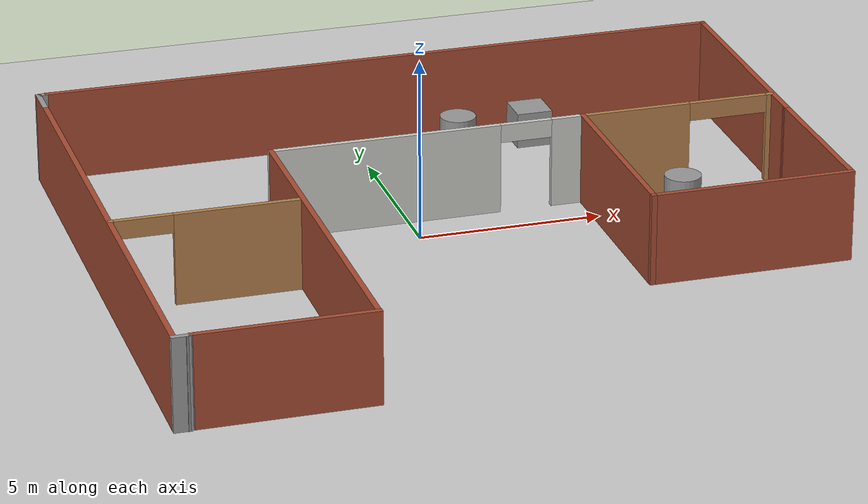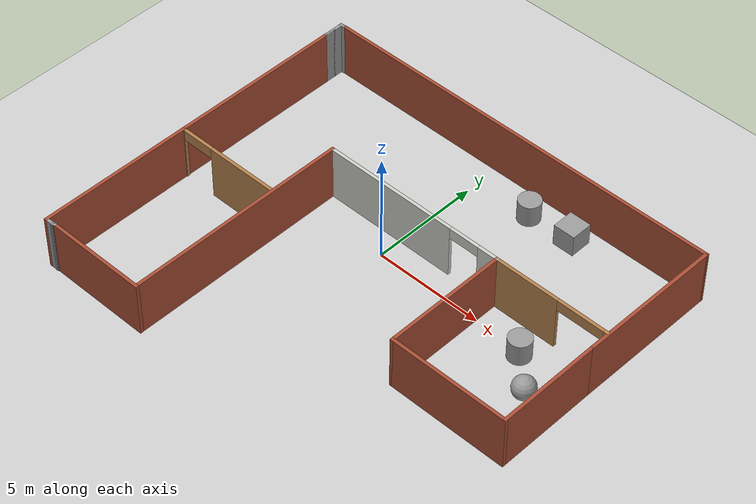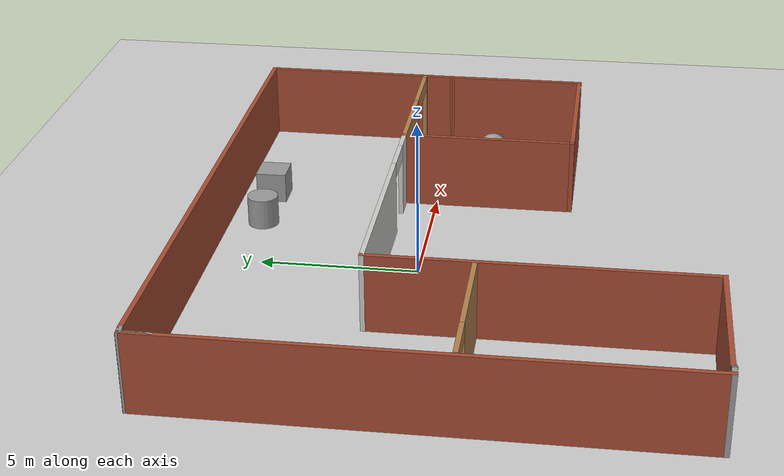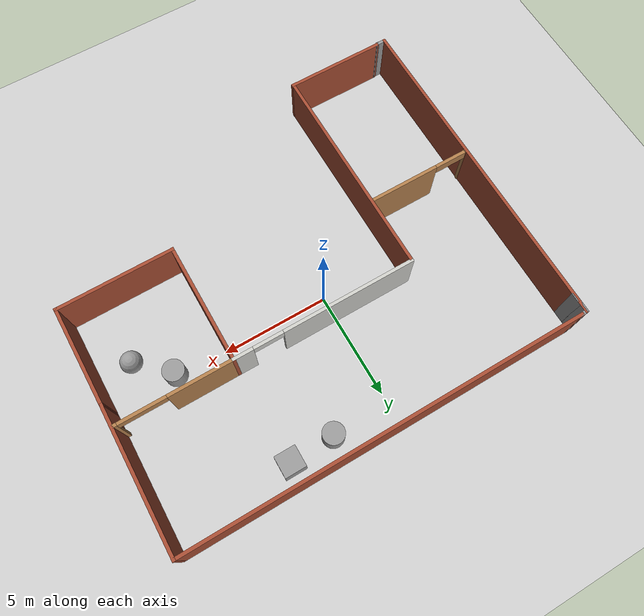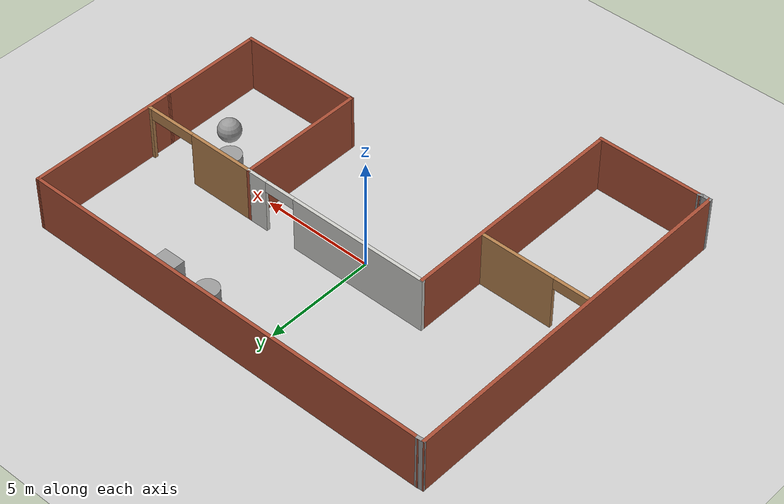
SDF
<sdf version="1.6">
 <world name="default">
  <model name="ground_plane">
   <static>1</static>
   <link name="link">
    <collision name="collision">
     <geometry><plane><normal>0 0 1</normal><size>100 100</size></plane></geometry>
     <surface><friction><ode><mu>100</mu><mu2>50</mu2></ode></friction></surface>
    </collision>
    <visual name="visual">
     <cast_shadows>0</cast_shadows>
     <geometry><plane><normal>0 0 1</normal><size>100 100</size></plane></geometry>
     <material>
      <script><uri>file://media/materials/scripts/gazebo.material</uri><name>Gazebo/Grey</name></script>
     </material>
    </visual>
   </link>
  </model>
  <model name="robot_world_new">
   <link name="Wall_46">
    <pose>0.126715 7.94172 0 0 -0 0</pose>
    <visual name="Wall_46_Visual">
     <pose>0 0 1.25 0 -0 0</pose>
     <geometry><box><size>19 0.15 2.5</size></box></geometry>
     <material>
      <script><uri>file://media/materials/scripts/gazebo.material</uri><name>Gazebo/Bricks</name></script>
      <ambient>1 1 1 1</ambient>
      <shader type="pixel"/>
      <diffuse>1 1 1 1</diffuse>
      <specular>0.2 0.2 0.2 1</specular>
      <emissive>0 0 0 1</emissive>
     </material>
     <meta><layer>0</layer></meta>
    </visual>
    <collision name="Wall_46_Collision">
     <pose>0 0 1.25 0 -0 0</pose>
     <geometry><box><size>19 0.15 2.5</size></box></geometry>
     <surface>
      <friction>
       <ode><mu>1</mu><mu2>1</mu2><fdir1>0 0 0</fdir1><slip1>0</slip1><slip2>0</slip2></ode>
       <torsional>
        <coefficient>1</coefficient>
        <patch_radius>0</patch_radius>
        <surface_radius>0</surface_radius>
        <use_patch_radius>1</use_patch_radius>
        <ode><slip>0</slip></ode>
       </torsional>
      </friction>
      <bounce><restitution_coefficient>0</restitution_coefficient><threshold>1e+06</threshold></bounce>
      <contact>
       <collide_without_contact>0</collide_without_contact>
       <collide_without_contact_bitmask>1</collide_without_contact_bitmask>
       <collide_bitmask>1</collide_bitmask>
       <ode>
        <soft_cfm>0</soft_cfm>
        <soft_erp>0.2</soft_erp>
        <kp>1e+13</kp>
        <kd>1</kd>
        <max_vel>0.01</max_vel>
        <min_depth>0</min_depth>
       </ode>
       <bullet>
        <split_impulse>1</split_impulse>
        <split_impulse_penetration_threshold>-0.01</split_impulse_penetration_threshold>
        <soft_cfm>0</soft_cfm>
        <soft_erp>0.2</soft_erp>
        <kp>1e+13</kp>
        <kd>1</kd>
       </bullet>
      </contact>
     </surface>
    </collision>
   </link>
   <link name="Wall_48">
    <pose>9.52607 4.64172 0 0 0 -1.57857</pose>
    <visual name="Wall_48_Visual">
     <pose>0 0 1.25 0 -0 0</pose>
     <geometry><box><size>6.75 0.15 2.5</size></box></geometry>
     <material>
      <script><uri>file://media/materials/scripts/gazebo.material</uri><name>Gazebo/Bricks</name></script>
      <ambient>1 1 1 1</ambient>
      <shader type="pixel"/>
      <diffuse>1 1 1 1</diffuse>
      <specular>0.2 0.2 0.2 1</specular>
      <emissive>0 0 0 1</emissive>
     </material>
     <meta><layer>0</layer></meta>
    </visual>
    <collision name="Wall_48_Collision">
     <pose>0 0 1.25 0 -0 0</pose>
     <geometry><box><size>6.75 0.15 2.5</size></box></geometry>
     <surface>
      <friction>
       <ode><mu>1</mu><mu2>1</mu2><fdir1>0 0 0</fdir1><slip1>0</slip1><slip2>0</slip2></ode>
       <torsional>
        <coefficient>1</coefficient>
        <patch_radius>0</patch_radius>
        <surface_radius>0</surface_radius>
        <use_patch_radius>1</use_patch_radius>
        <ode><slip>0</slip></ode>
       </torsional>
      </friction>
      <bounce><restitution_coefficient>0</restitution_coefficient><threshold>1e+06</threshold></bounce>
      <contact>
       <collide_without_contact>0</collide_without_contact>
       <collide_without_contact_bitmask>1</collide_without_contact_bitmask>
       <collide_bitmask>1</collide_bitmask>
       <ode>
        <soft_cfm>0</soft_cfm>
        <soft_erp>0.2</soft_erp>
        <kp>1e+13</kp>
        <kd>1</kd>
        <max_vel>0.01</max_vel>
        <min_depth>0</min_depth>
       </ode>
       <bullet>
        <split_impulse>1</split_impulse>
        <split_impulse_penetration_threshold>-0.01</split_impulse_penetration_threshold>
        <soft_cfm>0</soft_cfm>
        <soft_erp>0.2</soft_erp>
        <kp>1e+13</kp>
        <kd>1</kd>
       </bullet>
      </contact>
     </surface>
    </collision>
   </link>
   <link name="Wall_57">
    <pose>-6.79828 -7.90828 0 0 -0 3.14159</pose>
    <visual name="Wall_57_Visual">
     <pose>0 0 1.25 0 -0 0</pose>
     <geometry><box><size>4.75 0.15 2.5</size></box></geometry>
     <material>
      <script><uri>file://media/materials/scripts/gazebo.material</uri><name>Gazebo/Bricks</name></script>
      <ambient>1 1 1 1</ambient>
      <shader type="pixel"/>
      <diffuse>1 1 1 1</diffuse>
      <specular>0.2 0.2 0.2 1</specular>
      <emissive>0 0 0 1</emissive>
     </material>
     <meta><layer>0</layer></meta>
    </visual>
    <collision name="Wall_57_Collision">
     <pose>0 0 1.25 0 -0 0</pose>
     <geometry><box><size>4.75 0.15 2.5</size></box></geometry>
     <surface>
      <friction>
       <ode><mu>1</mu><mu2>1</mu2><fdir1>0 0 0</fdir1><slip1>0</slip1><slip2>0</slip2></ode>
       <torsional>
        <coefficient>1</coefficient>
        <patch_radius>0</patch_radius>
        <surface_radius>0</surface_radius>
        <use_patch_radius>1</use_patch_radius>
        <ode><slip>0</slip></ode>
       </torsional>
      </friction>
      <bounce><restitution_coefficient>0</restitution_coefficient><threshold>1e+06</threshold></bounce>
      <contact>
       <collide_without_contact>0</collide_without_contact>
       <collide_without_contact_bitmask>1</collide_without_contact_bitmask>
       <collide_bitmask>1</collide_bitmask>
       <ode>
        <soft_cfm>0</soft_cfm>
        <soft_erp>0.2</soft_erp>
        <kp>1e+13</kp>
        <kd>1</kd>
        <max_vel>0.01</max_vel>
        <min_depth>0</min_depth>
       </ode>
       <bullet>
        <split_impulse>1</split_impulse>
        <split_impulse_penetration_threshold>-0.01</split_impulse_penetration_threshold>
        <soft_cfm>0</soft_cfm>
        <soft_erp>0.2</soft_erp>
        <kp>1e+13</kp>
        <kd>1</kd>
       </bullet>
      </contact>
     </surface>
    </collision>
   </link>
   <link name="Wall_58">
    <pose>-9.14658 -7.92122 0 0 0 -2.87979</pose>
    <visual name="Wall_58_Visual">
     <pose>0 0 1.25 0 -0 0</pose>
     <geometry><box><size>0.25 0.15 2.5</size></box></geometry>
     <material>
      <script><uri>file://media/materials/scripts/gazebo.material</uri><name>Gazebo/Grey</name></script>
      <ambient>1 1 1 1</ambient>
      <shader type="pixel"/>
      <diffuse>0.7 0.7 0.7 1</diffuse>
      <specular>0.01 0.01 0.01 1</specular>
      <emissive>0 0 0 1</emissive>
     </material>
     <meta><layer>0</layer></meta>
    </visual>
    <collision name="Wall_58_Collision">
     <pose>0 0 1.25 0 -0 0</pose>
     <geometry><box><size>0.25 0.15 2.5</size></box></geometry>
     <surface>
      <friction>
       <ode><mu>1</mu><mu2>1</mu2><fdir1>0 0 0</fdir1><slip1>0</slip1><slip2>0</slip2></ode>
       <torsional>
        <coefficient>1</coefficient>
        <patch_radius>0</patch_radius>
        <surface_radius>0</surface_radius>
        <use_patch_radius>1</use_patch_radius>
        <ode><slip>0</slip></ode>
       </torsional>
      </friction>
      <bounce><restitution_coefficient>0</restitution_coefficient><threshold>1e+06</threshold></bounce>
      <contact>
       <collide_without_contact>0</collide_without_contact>
       <collide_without_contact_bitmask>1</collide_without_contact_bitmask>
       <collide_bitmask>1</collide_bitmask>
       <ode>
        <soft_cfm>0</soft_cfm>
        <soft_erp>0.2</soft_erp>
        <kp>1e+13</kp>
        <kd>1</kd>
        <max_vel>0.01</max_vel>
        <min_depth>0</min_depth>
       </ode>
       <bullet>
        <split_impulse>1</split_impulse>
        <split_impulse_penetration_threshold>-0.01</split_impulse_penetration_threshold>
        <soft_cfm>0</soft_cfm>
        <soft_erp>0.2</soft_erp>
        <kp>1e+13</kp>
        <kd>1</kd>
       </bullet>
      </contact>
     </surface>
    </collision>
   </link>
   <link name="Wall_59">
    <pose>-9.36988 -7.93416 0 0 -0 3.14159</pose>
    <visual name="Wall_59_Visual">
     <pose>0 0 1.25 0 -0 0</pose>
     <geometry><box><size>0.5 0.15 2.5</size></box></geometry>
     <material>
      <script><uri>file://media/materials/scripts/gazebo.material</uri><name>Gazebo/Grey</name></script>
      <ambient>1 1 1 1</ambient>
      <shader type="pixel"/>
      <diffuse>0.7 0.7 0.7 1</diffuse>
      <specular>0.01 0.01 0.01 1</specular>
      <emissive>0 0 0 1</emissive>
     </material>
     <meta><layer>0</layer></meta>
    </visual>
    <collision name="Wall_59_Collision">
     <pose>0 0 1.25 0 -0 0</pose>
     <geometry><box><size>0.5 0.15 2.5</size></box></geometry>
     <surface>
      <friction>
       <ode><mu>1</mu><mu2>1</mu2><fdir1>0 0 0</fdir1><slip1>0</slip1><slip2>0</slip2></ode>
       <torsional>
        <coefficient>1</coefficient>
        <patch_radius>0</patch_radius>
        <surface_radius>0</surface_radius>
        <use_patch_radius>1</use_patch_radius>
        <ode><slip>0</slip></ode>
       </torsional>
      </friction>
      <bounce><restitution_coefficient>0</restitution_coefficient><threshold>1e+06</threshold></bounce>
      <contact>
       <collide_without_contact>0</collide_without_contact>
       <collide_without_contact_bitmask>1</collide_without_contact_bitmask>
       <collide_bitmask>1</collide_bitmask>
       <ode>
        <soft_cfm>0</soft_cfm>
        <soft_erp>0.2</soft_erp>
        <kp>1e+13</kp>
        <kd>1</kd>
        <max_vel>0.01</max_vel>
        <min_depth>0</min_depth>
       </ode>
       <bullet>
        <split_impulse>1</split_impulse>
        <split_impulse_penetration_threshold>-0.01</split_impulse_penetration_threshold>
        <soft_cfm>0</soft_cfm>
        <soft_erp>0.2</soft_erp>
        <kp>1e+13</kp>
        <kd>1</kd>
       </bullet>
      </contact>
     </surface>
    </collision>
   </link>
   <link name="Wall_60">
    <pose>-9.54488 -0.009158 0 0 -0 1.5708</pose>
    <visual name="Wall_60_Visual">
     <pose>0 0 1.25 0 -0 0</pose>
     <geometry><box><size>16 0.15 2.5</size></box></geometry>
     <material>
      <script><uri>file://media/materials/scripts/gazebo.material</uri><name>Gazebo/Bricks</name></script>
      <ambient>1 1 1 1</ambient>
      <shader type="pixel"/>
      <diffuse>1 1 1 1</diffuse>
      <specular>0.2 0.2 0.2 1</specular>
      <emissive>0 0 0 1</emissive>
     </material>
     <meta><layer>0</layer></meta>
    </visual>
    <collision name="Wall_60_Collision">
     <pose>0 0 1.25 0 -0 0</pose>
     <geometry><box><size>16 0.15 2.5</size></box></geometry>
     <surface>
      <friction>
       <ode><mu>1</mu><mu2>1</mu2><fdir1>0 0 0</fdir1><slip1>0</slip1><slip2>0</slip2></ode>
       <torsional>
        <coefficient>1</coefficient>
        <patch_radius>0</patch_radius>
        <surface_radius>0</surface_radius>
        <use_patch_radius>1</use_patch_radius>
        <ode><slip>0</slip></ode>
       </torsional>
      </friction>
      <bounce><restitution_coefficient>0</restitution_coefficient><threshold>1e+06</threshold></bounce>
      <contact>
       <collide_without_contact>0</collide_without_contact>
       <collide_without_contact_bitmask>1</collide_without_contact_bitmask>
       <collide_bitmask>1</collide_bitmask>
       <ode>
        <soft_cfm>0</soft_cfm>
        <soft_erp>0.2</soft_erp>
        <kp>1e+13</kp>
        <kd>1</kd>
        <max_vel>0.01</max_vel>
        <min_depth>0</min_depth>
       </ode>
       <bullet>
        <split_impulse>1</split_impulse>
        <split_impulse_penetration_threshold>-0.01</split_impulse_penetration_threshold>
        <soft_cfm>0</soft_cfm>
        <soft_erp>0.2</soft_erp>
        <kp>1e+13</kp>
        <kd>1</kd>
       </bullet>
      </contact>
     </surface>
    </collision>
   </link>
   <link name="Wall_62">
    <pose>-9.42158 7.92878 0 0 0 -3.03702</pose>
    <visual name="Wall_62_Visual">
     <pose>0 0 1.25 0 -0 0</pose>
     <geometry><box><size>0.397947 0.15 2.5</size></box></geometry>
     <material>
      <script><uri>file://media/materials/scripts/gazebo.material</uri><name>Gazebo/Grey</name></script>
      <ambient>1 1 1 1</ambient>
      <shader type="pixel"/>
      <diffuse>0.7 0.7 0.7 1</diffuse>
      <specular>0.01 0.01 0.01 1</specular>
      <emissive>0 0 0 1</emissive>
     </material>
     <meta><layer>0</layer></meta>
    </visual>
    <collision name="Wall_62_Collision">
     <pose>0 0 1.25 0 -0 0</pose>
     <geometry><box><size>0.397947 0.15 2.5</size></box></geometry>
     <surface>
      <friction>
       <ode><mu>1</mu><mu2>1</mu2><fdir1>0 0 0</fdir1><slip1>0</slip1><slip2>0</slip2></ode>
       <torsional>
        <coefficient>1</coefficient>
        <patch_radius>0</patch_radius>
        <surface_radius>0</surface_radius>
        <use_patch_radius>1</use_patch_radius>
        <ode><slip>0</slip></ode>
       </torsional>
      </friction>
      <bounce><restitution_coefficient>0</restitution_coefficient><threshold>1e+06</threshold></bounce>
      <contact>
       <collide_without_contact>0</collide_without_contact>
       <collide_without_contact_bitmask>1</collide_without_contact_bitmask>
       <collide_bitmask>1</collide_bitmask>
       <ode>
        <soft_cfm>0</soft_cfm>
        <soft_erp>0.2</soft_erp>
        <kp>1e+13</kp>
        <kd>1</kd>
        <max_vel>0.01</max_vel>
        <min_depth>0</min_depth>
       </ode>
       <bullet>
        <split_impulse>1</split_impulse>
        <split_impulse_penetration_threshold>-0.01</split_impulse_penetration_threshold>
        <soft_cfm>0</soft_cfm>
        <soft_erp>0.2</soft_erp>
        <kp>1e+13</kp>
        <kd>1</kd>
       </bullet>
      </contact>
     </surface>
    </collision>
   </link>
   <link name="Wall_63">
    <pose>-9.54488 7.49084 0 0 0 -1.5708</pose>
    <visual name="Wall_63_Visual">
     <pose>0 0 1.25 0 -0 0</pose>
     <geometry><box><size>1 0.15 2.5</size></box></geometry>
     <material>
      <script><uri>file://media/materials/scripts/gazebo.material</uri><name>Gazebo/Grey</name></script>
      <ambient>1 1 1 1</ambient>
      <shader type="pixel"/>
      <diffuse>0.7 0.7 0.7 1</diffuse>
      <specular>0.01 0.01 0.01 1</specular>
      <emissive>0 0 0 1</emissive>
     </material>
     <meta><layer>0</layer></meta>
    </visual>
    <collision name="Wall_63_Collision">
     <pose>0 0 1.25 0 -0 0</pose>
     <geometry><box><size>1 0.15 2.5</size></box></geometry>
     <surface>
      <friction>
       <ode><mu>1</mu><mu2>1</mu2><fdir1>0 0 0</fdir1><slip1>0</slip1><slip2>0</slip2></ode>
       <torsional>
        <coefficient>1</coefficient>
        <patch_radius>0</patch_radius>
        <surface_radius>0</surface_radius>
        <use_patch_radius>1</use_patch_radius>
        <ode><slip>0</slip></ode>
       </torsional>
      </friction>
      <bounce><restitution_coefficient>0</restitution_coefficient><threshold>1e+06</threshold></bounce>
      <contact>
       <collide_without_contact>0</collide_without_contact>
       <collide_without_contact_bitmask>1</collide_without_contact_bitmask>
       <collide_bitmask>1</collide_bitmask>
       <ode>
        <soft_cfm>0</soft_cfm>
        <soft_erp>0.2</soft_erp>
        <kp>1e+13</kp>
        <kd>1</kd>
        <max_vel>0.01</max_vel>
        <min_depth>0</min_depth>
       </ode>
       <bullet>
        <split_impulse>1</split_impulse>
        <split_impulse_penetration_threshold>-0.01</split_impulse_penetration_threshold>
        <soft_cfm>0</soft_cfm>
        <soft_erp>0.2</soft_erp>
        <kp>1e+13</kp>
        <kd>1</kd>
       </bullet>
      </contact>
     </surface>
    </collision>
   </link>
   <link name="Wall_64">
    <pose>-9.54488 7.49084 0 0 -0 1.5708</pose>
    <visual name="Wall_64_Visual">
     <pose>0 0 1.25 0 -0 0</pose>
     <geometry><box><size>1 0.15 2.5</size></box></geometry>
     <material>
      <script><uri>file://media/materials/scripts/gazebo.material</uri><name>Gazebo/Grey</name></script>
      <ambient>1 1 1 1</ambient>
      <shader type="pixel"/>
      <diffuse>0.7 0.7 0.7 1</diffuse>
      <specular>0.01 0.01 0.01 1</specular>
      <emissive>0 0 0 1</emissive>
     </material>
     <meta><layer>0</layer></meta>
    </visual>
    <collision name="Wall_64_Collision">
     <pose>0 0 1.25 0 -0 0</pose>
     <geometry><box><size>1 0.15 2.5</size></box></geometry>
     <surface>
      <friction>
       <ode><mu>1</mu><mu2>1</mu2><fdir1>0 0 0</fdir1><slip1>0</slip1><slip2>0</slip2></ode>
       <torsional>
        <coefficient>1</coefficient>
        <patch_radius>0</patch_radius>
        <surface_radius>0</surface_radius>
        <use_patch_radius>1</use_patch_radius>
        <ode><slip>0</slip></ode>
       </torsional>
      </friction>
      <bounce><restitution_coefficient>0</restitution_coefficient><threshold>1e+06</threshold></bounce>
      <contact>
       <collide_without_contact>0</collide_without_contact>
       <collide_without_contact_bitmask>1</collide_without_contact_bitmask>
       <collide_bitmask>1</collide_bitmask>
       <ode>
        <soft_cfm>0</soft_cfm>
        <soft_erp>0.2</soft_erp>
        <kp>1e+13</kp>
        <kd>1</kd>
        <max_vel>0.01</max_vel>
        <min_depth>0</min_depth>
       </ode>
       <bullet>
        <split_impulse>1</split_impulse>
        <split_impulse_penetration_threshold>-0.01</split_impulse_penetration_threshold>
        <soft_cfm>0</soft_cfm>
        <soft_erp>0.2</soft_erp>
        <kp>1e+13</kp>
        <kd>1</kd>
       </bullet>
      </contact>
     </surface>
    </collision>
   </link>
   <link name="Wall_66">
    <pose>9.50042 -0.958277 0 0 0 -1.5708</pose>
    <visual name="Wall_66_Visual">
     <pose>0 0 1.25 0 -0 0</pose>
     <geometry><box><size>4.75 0.15 2.5</size></box></geometry>
     <material>
      <script><uri>file://media/materials/scripts/gazebo.material</uri><name>Gazebo/Bricks</name></script>
      <ambient>1 1 1 1</ambient>
      <shader type="pixel"/>
      <diffuse>1 1 1 1</diffuse>
      <specular>0.2 0.2 0.2 1</specular>
      <emissive>0 0 0 1</emissive>
     </material>
     <meta><layer>0</layer></meta>
    </visual>
    <collision name="Wall_66_Collision">
     <pose>0 0 1.25 0 -0 0</pose>
     <geometry><box><size>4.75 0.15 2.5</size></box></geometry>
     <surface>
      <friction>
       <ode><mu>1</mu><mu2>1</mu2><fdir1>0 0 0</fdir1><slip1>0</slip1><slip2>0</slip2></ode>
       <torsional>
        <coefficient>1</coefficient>
        <patch_radius>0</patch_radius>
        <surface_radius>0</surface_radius>
        <use_patch_radius>1</use_patch_radius>
        <ode><slip>0</slip></ode>
       </torsional>
      </friction>
      <bounce><restitution_coefficient>0</restitution_coefficient><threshold>1e+06</threshold></bounce>
      <contact>
       <collide_without_contact>0</collide_without_contact>
       <collide_without_contact_bitmask>1</collide_without_contact_bitmask>
       <collide_bitmask>1</collide_bitmask>
       <ode>
        <soft_cfm>0</soft_cfm>
        <soft_erp>0.2</soft_erp>
        <kp>1e+13</kp>
        <kd>1</kd>
        <max_vel>0.01</max_vel>
        <min_depth>0</min_depth>
       </ode>
       <bullet>
        <split_impulse>1</split_impulse>
        <split_impulse_penetration_threshold>-0.01</split_impulse_penetration_threshold>
        <soft_cfm>0</soft_cfm>
        <soft_erp>0.2</soft_erp>
        <kp>1e+13</kp>
        <kd>1</kd>
       </bullet>
      </contact>
     </surface>
    </collision>
   </link>
   <link name="Wall_67">
    <pose>6.79633 -3.25828 0 0 -0 3.14159</pose>
    <visual name="Wall_67_Visual">
     <pose>0 0 1.25 0 -0 0</pose>
     <geometry><box><size>5.55818 0.15 2.5</size></box></geometry>
     <material>
      <script><uri>file://media/materials/scripts/gazebo.material</uri><name>Gazebo/Bricks</name></script>
      <ambient>1 1 1 1</ambient>
      <shader type="pixel"/>
      <diffuse>1 1 1 1</diffuse>
      <specular>0.2 0.2 0.2 1</specular>
      <emissive>0 0 0 1</emissive>
     </material>
     <meta><layer>0</layer></meta>
    </visual>
    <collision name="Wall_67_Collision">
     <pose>0 0 1.25 0 -0 0</pose>
     <geometry><box><size>5.55818 0.15 2.5</size></box></geometry>
     <surface>
      <friction>
       <ode><mu>1</mu><mu2>1</mu2><fdir1>0 0 0</fdir1><slip1>0</slip1><slip2>0</slip2></ode>
       <torsional>
        <coefficient>1</coefficient>
        <patch_radius>0</patch_radius>
        <surface_radius>0</surface_radius>
        <use_patch_radius>1</use_patch_radius>
        <ode><slip>0</slip></ode>
       </torsional>
      </friction>
      <bounce><restitution_coefficient>0</restitution_coefficient><threshold>1e+06</threshold></bounce>
      <contact>
       <collide_without_contact>0</collide_without_contact>
       <collide_without_contact_bitmask>1</collide_without_contact_bitmask>
       <collide_bitmask>1</collide_bitmask>
       <ode>
        <soft_cfm>0</soft_cfm>
        <soft_erp>0.2</soft_erp>
        <kp>1e+13</kp>
        <kd>1</kd>
        <max_vel>0.01</max_vel>
        <min_depth>0</min_depth>
       </ode>
       <bullet>
        <split_impulse>1</split_impulse>
        <split_impulse_penetration_threshold>-0.01</split_impulse_penetration_threshold>
        <soft_cfm>0</soft_cfm>
        <soft_erp>0.2</soft_erp>
        <kp>1e+13</kp>
        <kd>1</kd>
       </bullet>
      </contact>
     </surface>
    </collision>
   </link>
   <link name="Wall_73">
    <pose>4.09224 -0.458277 0 0 -0 1.5708</pose>
    <visual name="Wall_73_Visual">
     <pose>0 0 1.25 0 -0 0</pose>
     <geometry><box><size>5.75 0.15 2.5</size></box></geometry>
     <material>
      <script><uri>file://media/materials/scripts/gazebo.material</uri><name>Gazebo/Bricks</name></script>
      <ambient>1 1 1 1</ambient>
      <shader type="pixel"/>
      <diffuse>1 1 1 1</diffuse>
      <specular>0.2 0.2 0.2 1</specular>
      <emissive>0 0 0 1</emissive>
     </material>
     <meta><layer>0</layer></meta>
    </visual>
    <collision name="Wall_73_Collision">
     <pose>0 0 1.25 0 -0 0</pose>
     <geometry><box><size>5.75 0.15 2.5</size></box></geometry>
     <surface>
      <friction>
       <ode><mu>1</mu><mu2>1</mu2><fdir1>0 0 0</fdir1><slip1>0</slip1><slip2>0</slip2></ode>
       <torsional>
        <coefficient>1</coefficient>
        <patch_radius>0</patch_radius>
        <surface_radius>0</surface_radius>
        <use_patch_radius>1</use_patch_radius>
        <ode><slip>0</slip></ode>
       </torsional>
      </friction>
      <bounce><restitution_coefficient>0</restitution_coefficient><threshold>1e+06</threshold></bounce>
      <contact>
       <collide_without_contact>0</collide_without_contact>
       <collide_without_contact_bitmask>1</collide_without_contact_bitmask>
       <collide_bitmask>1</collide_bitmask>
       <ode>
        <soft_cfm>0</soft_cfm>
        <soft_erp>0.2</soft_erp>
        <kp>1e+13</kp>
        <kd>1</kd>
        <max_vel>0.01</max_vel>
        <min_depth>0</min_depth>
       </ode>
       <bullet>
        <split_impulse>1</split_impulse>
        <split_impulse_penetration_threshold>-0.01</split_impulse_penetration_threshold>
        <soft_cfm>0</soft_cfm>
        <soft_erp>0.2</soft_erp>
        <kp>1e+13</kp>
        <kd>1</kd>
       </bullet>
      </contact>
     </surface>
    </collision>
   </link>
   <link name="Wall_74">
    <pose>-0.207759 2.34172 0 0 -0 3.14159</pose>
    <visual name="Wall_74_Visual_0">
     <pose>-3.88634 0 1.25 0 -0 0</pose>
     <geometry><box><size>0.977324 0.15 2.5</size></box></geometry>
     <material>
      <script><uri>file://media/materials/scripts/gazebo.material</uri><name>Gazebo/CeilingTiled</name></script>
      <ambient>1 1 1 1</ambient>
      <shader type="pixel"/>
      <diffuse>1 1 1 1</diffuse>
      <specular>0 0 0 1</specular>
      <emissive>0 0 0 1</emissive>
     </material>
     <meta><layer>0</layer></meta>
    </visual>
    <visual name="Wall_74_Visual_1">
     <pose>1.19711 0 1.25 0 -0 0</pose>
     <geometry><box><size>6.35579 0.15 2.5</size></box></geometry>
     <material>
      <script><uri>file://media/materials/scripts/gazebo.material</uri><name>Gazebo/CeilingTiled</name></script>
      <ambient>1 1 1 1</ambient>
      <shader type="pixel"/>
      <diffuse>1 1 1 1</diffuse>
      <specular>0 0 0 1</specular>
      <emissive>0 0 0 1</emissive>
     </material>
     <meta><layer>0</layer></meta>
    </visual>
    <visual name="Wall_74_Visual_2">
     <pose>-2.68923 0 2.25 0 -0 0</pose>
     <geometry><box><size>1.41689 0.15 0.5</size></box></geometry>
     <material>
      <script><uri>file://media/materials/scripts/gazebo.material</uri><name>Gazebo/CeilingTiled</name></script>
      <ambient>1 1 1 1</ambient>
      <shader type="pixel"/>
      <diffuse>1 1 1 1</diffuse>
      <specular>0 0 0 1</specular>
      <emissive>0 0 0 1</emissive>
     </material>
     <meta><layer>0</layer></meta>
    </visual>
    <collision name="Wall_74_Collision_0">
     <pose>-3.88634 0 1.25 0 -0 0</pose>
     <geometry><box><size>0.977324 0.15 2.5</size></box></geometry>
     <surface>
      <friction>
       <ode><mu>1</mu><mu2>1</mu2><fdir1>0 0 0</fdir1><slip1>0</slip1><slip2>0</slip2></ode>
       <torsional>
        <coefficient>1</coefficient>
        <patch_radius>0</patch_radius>
        <surface_radius>0</surface_radius>
        <use_patch_radius>1</use_patch_radius>
        <ode><slip>0</slip></ode>
       </torsional>
      </friction>
      <bounce><restitution_coefficient>0</restitution_coefficient><threshold>1e+06</threshold></bounce>
      <contact>
       <collide_without_contact>0</collide_without_contact>
       <collide_without_contact_bitmask>1</collide_without_contact_bitmask>
       <collide_bitmask>1</collide_bitmask>
       <ode>
        <soft_cfm>0</soft_cfm>
        <soft_erp>0.2</soft_erp>
        <kp>1e+13</kp>
        <kd>1</kd>
        <max_vel>0.01</max_vel>
        <min_depth>0</min_depth>
       </ode>
       <bullet>
        <split_impulse>1</split_impulse>
        <split_impulse_penetration_threshold>-0.01</split_impulse_penetration_threshold>
        <soft_cfm>0</soft_cfm>
        <soft_erp>0.2</soft_erp>
        <kp>1e+13</kp>
        <kd>1</kd>
       </bullet>
      </contact>
     </surface>
    </collision>
    <collision name="Wall_74_Collision_1">
     <pose>1.19711 0 1.25 0 -0 0</pose>
     <geometry><box><size>6.35579 0.15 2.5</size></box></geometry>
     <surface>
      <friction>
       <ode><mu>1</mu><mu2>1</mu2><fdir1>0 0 0</fdir1><slip1>0</slip1><slip2>0</slip2></ode>
       <torsional>
        <coefficient>1</coefficient>
        <patch_radius>0</patch_radius>
        <surface_radius>0</surface_radius>
        <use_patch_radius>1</use_patch_radius>
        <ode><slip>0</slip></ode>
       </torsional>
      </friction>
      <bounce><restitution_coefficient>0</restitution_coefficient><threshold>1e+06</threshold></bounce>
      <contact>
       <collide_without_contact>0</collide_without_contact>
       <collide_without_contact_bitmask>1</collide_without_contact_bitmask>
       <collide_bitmask>1</collide_bitmask>
       <ode>
        <soft_cfm>0</soft_cfm>
        <soft_erp>0.2</soft_erp>
        <kp>1e+13</kp>
        <kd>1</kd>
        <max_vel>0.01</max_vel>
        <min_depth>0</min_depth>
       </ode>
       <bullet>
        <split_impulse>1</split_impulse>
        <split_impulse_penetration_threshold>-0.01</split_impulse_penetration_threshold>
        <soft_cfm>0</soft_cfm>
        <soft_erp>0.2</soft_erp>
        <kp>1e+13</kp>
        <kd>1</kd>
       </bullet>
      </contact>
     </surface>
    </collision>
    <collision name="Wall_74_Collision_2">
     <pose>-2.68923 0 2.25 0 -0 0</pose>
     <geometry><box><size>1.41689 0.15 0.5</size></box></geometry>
     <surface>
      <friction>
       <ode><mu>1</mu><mu2>1</mu2><fdir1>0 0 0</fdir1><slip1>0</slip1><slip2>0</slip2></ode>
       <torsional>
        <coefficient>1</coefficient>
        <patch_radius>0</patch_radius>
        <surface_radius>0</surface_radius>
        <use_patch_radius>1</use_patch_radius>
        <ode><slip>0</slip></ode>
       </torsional>
      </friction>
      <bounce><restitution_coefficient>0</restitution_coefficient><threshold>1e+06</threshold></bounce>
      <contact>
       <collide_without_contact>0</collide_without_contact>
       <collide_without_contact_bitmask>1</collide_without_contact_bitmask>
       <collide_bitmask>1</collide_bitmask>
       <ode>
        <soft_cfm>0</soft_cfm>
        <soft_erp>0.2</soft_erp>
        <kp>1e+13</kp>
        <kd>1</kd>
        <max_vel>0.01</max_vel>
        <min_depth>0</min_depth>
       </ode>
       <bullet>
        <split_impulse>1</split_impulse>
        <split_impulse_penetration_threshold>-0.01</split_impulse_penetration_threshold>
        <soft_cfm>0</soft_cfm>
        <soft_erp>0.2</soft_erp>
        <kp>1e+13</kp>
        <kd>1</kd>
       </bullet>
      </contact>
     </surface>
    </collision>
   </link>
   <link name="Wall_75">
    <pose>-4.50776 -2.70828 0 0 0 -1.5708</pose>
    <visual name="Wall_75_Visual">
     <pose>0 0 1.25 0 -0 0</pose>
     <geometry><box><size>10.25 0.15 2.5</size></box></geometry>
     <material>
      <script><uri>file://media/materials/scripts/gazebo.material</uri><name>Gazebo/Bricks</name></script>
      <ambient>1 1 1 1</ambient>
      <shader type="pixel"/>
      <diffuse>1 1 1 1</diffuse>
      <specular>0.2 0.2 0.2 1</specular>
      <emissive>0 0 0 1</emissive>
     </material>
     <meta><layer>0</layer></meta>
    </visual>
    <collision name="Wall_75_Collision">
     <pose>0 0 1.25 0 -0 0</pose>
     <geometry><box><size>10.25 0.15 2.5</size></box></geometry>
     <surface>
      <friction>
       <ode><mu>1</mu><mu2>1</mu2><fdir1>0 0 0</fdir1><slip1>0</slip1><slip2>0</slip2></ode>
       <torsional>
        <coefficient>1</coefficient>
        <patch_radius>0</patch_radius>
        <surface_radius>0</surface_radius>
        <use_patch_radius>1</use_patch_radius>
        <ode><slip>0</slip></ode>
       </torsional>
      </friction>
      <bounce><restitution_coefficient>0</restitution_coefficient><threshold>1e+06</threshold></bounce>
      <contact>
       <collide_without_contact>0</collide_without_contact>
       <collide_without_contact_bitmask>1</collide_without_contact_bitmask>
       <collide_bitmask>1</collide_bitmask>
       <ode>
        <soft_cfm>0</soft_cfm>
        <soft_erp>0.2</soft_erp>
        <kp>1e+13</kp>
        <kd>1</kd>
        <max_vel>0.01</max_vel>
        <min_depth>0</min_depth>
       </ode>
       <bullet>
        <split_impulse>1</split_impulse>
        <split_impulse_penetration_threshold>-0.01</split_impulse_penetration_threshold>
        <soft_cfm>0</soft_cfm>
        <soft_erp>0.2</soft_erp>
        <kp>1e+13</kp>
        <kd>1</kd>
       </bullet>
      </contact>
     </surface>
    </collision>
   </link>
   <link name="Wall_77">
    <pose>6.76724 2.34172 0 0 -0 0</pose>
    <visual name="Wall_77_Visual_0">
     <pose>-1.2065 0 1.25 0 -0 0</pose>
     <geometry><box><size>3.08701 0.15 2.5</size></box></geometry>
     <material>
      <script><uri>file://media/materials/scripts/gazebo.material</uri><name>Gazebo/Wood</name></script>
      <ambient>1 1 1 1</ambient>
      <shader type="pixel"/>
      <diffuse>1 1 1 1</diffuse>
      <specular>0.2 0.2 0.2 1</specular>
      <emissive>0 0 0 1</emissive>
     </material>
     <meta><layer>0</layer></meta>
    </visual>
    <visual name="Wall_77_Visual_1">
     <pose>2.63909 0 1.25 0 -0 0</pose>
     <geometry><box><size>0.221822 0.15 2.5</size></box></geometry>
     <material>
      <script><uri>file://media/materials/scripts/gazebo.material</uri><name>Gazebo/Wood</name></script>
      <ambient>1 1 1 1</ambient>
      <shader type="pixel"/>
      <diffuse>1 1 1 1</diffuse>
      <specular>0.2 0.2 0.2 1</specular>
      <emissive>0 0 0 1</emissive>
     </material>
     <meta><layer>0</layer></meta>
    </visual>
    <visual name="Wall_77_Visual_2">
     <pose>1.43259 0 2.25 0 -0 0</pose>
     <geometry><box><size>2.19117 0.15 0.5</size></box></geometry>
     <material>
      <script><uri>file://media/materials/scripts/gazebo.material</uri><name>Gazebo/Wood</name></script>
      <ambient>1 1 1 1</ambient>
      <shader type="pixel"/>
      <diffuse>1 1 1 1</diffuse>
      <specular>0.2 0.2 0.2 1</specular>
      <emissive>0 0 0 1</emissive>
     </material>
     <meta><layer>0</layer></meta>
    </visual>
    <collision name="Wall_77_Collision_2">
     <pose>1.43259 0 2.25 0 -0 0</pose>
     <geometry><box><size>2.19117 0.15 0.5</size></box></geometry>
     <surface>
      <friction>
       <ode><mu>1</mu><mu2>1</mu2><fdir1>0 0 0</fdir1><slip1>0</slip1><slip2>0</slip2></ode>
       <torsional>
        <coefficient>1</coefficient>
        <patch_radius>0</patch_radius>
        <surface_radius>0</surface_radius>
        <use_patch_radius>1</use_patch_radius>
        <ode><slip>0</slip></ode>
       </torsional>
      </friction>
      <bounce><restitution_coefficient>0</restitution_coefficient><threshold>1e+06</threshold></bounce>
      <contact>
       <collide_without_contact>0</collide_without_contact>
       <collide_without_contact_bitmask>1</collide_without_contact_bitmask>
       <collide_bitmask>1</collide_bitmask>
       <ode>
        <soft_cfm>0</soft_cfm>
        <soft_erp>0.2</soft_erp>
        <kp>1e+13</kp>
        <kd>1</kd>
        <max_vel>0.01</max_vel>
        <min_depth>0</min_depth>
       </ode>
       <bullet>
        <split_impulse>1</split_impulse>
        <split_impulse_penetration_threshold>-0.01</split_impulse_penetration_threshold>
        <soft_cfm>0</soft_cfm>
        <soft_erp>0.2</soft_erp>
        <kp>1e+13</kp>
        <kd>1</kd>
       </bullet>
      </contact>
     </surface>
    </collision>
    <collision name="Wall_77_Collision_0">
     <pose>-1.2065 0 1.25 0 -0 0</pose>
     <geometry><box><size>3.08701 0.15 2.5</size></box></geometry>
     <surface>
      <friction>
       <ode><mu>1</mu><mu2>1</mu2><fdir1>0 0 0</fdir1><slip1>0</slip1><slip2>0</slip2></ode>
       <torsional>
        <coefficient>1</coefficient>
        <patch_radius>0</patch_radius>
        <surface_radius>0</surface_radius>
        <use_patch_radius>1</use_patch_radius>
        <ode><slip>0</slip></ode>
       </torsional>
      </friction>
      <bounce><restitution_coefficient>0</restitution_coefficient><threshold>1e+06</threshold></bounce>
      <contact>
       <collide_without_contact>0</collide_without_contact>
       <collide_without_contact_bitmask>1</collide_without_contact_bitmask>
       <collide_bitmask>1</collide_bitmask>
       <ode>
        <soft_cfm>0</soft_cfm>
        <soft_erp>0.2</soft_erp>
        <kp>1e+13</kp>
        <kd>1</kd>
        <max_vel>0.01</max_vel>
        <min_depth>0</min_depth>
       </ode>
       <bullet>
        <split_impulse>1</split_impulse>
        <split_impulse_penetration_threshold>-0.01</split_impulse_penetration_threshold>
        <soft_cfm>0</soft_cfm>
        <soft_erp>0.2</soft_erp>
        <kp>1e+13</kp>
        <kd>1</kd>
       </bullet>
      </contact>
     </surface>
    </collision>
    <collision name="Wall_77_Collision_1">
     <pose>2.63909 0 1.25 0 -0 0</pose>
     <geometry><box><size>0.221822 0.15 2.5</size></box></geometry>
     <surface>
      <friction>
       <ode><mu>1</mu><mu2>1</mu2><fdir1>0 0 0</fdir1><slip1>0</slip1><slip2>0</slip2></ode>
       <torsional>
        <coefficient>1</coefficient>
        <patch_radius>0</patch_radius>
        <surface_radius>0</surface_radius>
        <use_patch_radius>1</use_patch_radius>
        <ode><slip>0</slip></ode>
       </torsional>
      </friction>
      <bounce><restitution_coefficient>0</restitution_coefficient><threshold>1e+06</threshold></bounce>
      <contact>
       <collide_without_contact>0</collide_without_contact>
       <collide_without_contact_bitmask>1</collide_without_contact_bitmask>
       <collide_bitmask>1</collide_bitmask>
       <ode>
        <soft_cfm>0</soft_cfm>
        <soft_erp>0.2</soft_erp>
        <kp>1e+13</kp>
        <kd>1</kd>
        <max_vel>0.01</max_vel>
        <min_depth>0</min_depth>
       </ode>
       <bullet>
        <split_impulse>1</split_impulse>
        <split_impulse_penetration_threshold>-0.01</split_impulse_penetration_threshold>
        <soft_cfm>0</soft_cfm>
        <soft_erp>0.2</soft_erp>
        <kp>1e+13</kp>
        <kd>1</kd>
       </bullet>
      </contact>
     </surface>
    </collision>
   </link>
   <link name="Wall_96">
    <pose>-7.08443 -0.919722 0 0 -0 0</pose>
    <visual name="Wall_96_Visual_0">
     <pose>-2.426 0 1.25 0 -0 0</pose>
     <geometry><box><size>0.147992 0.15 2.5</size></box></geometry>
     <material>
      <script><uri>file://media/materials/scripts/gazebo.material</uri><name>Gazebo/Wood</name></script>
      <ambient>1 1 1 1</ambient>
      <shader type="pixel"/>
      <diffuse>1 1 1 1</diffuse>
      <specular>0.2 0.2 0.2 1</specular>
      <emissive>0 0 0 1</emissive>
     </material>
     <meta><layer>0</layer></meta>
    </visual>
    <visual name="Wall_96_Visual_1">
     <pose>0.84278 0 1.25 0 -0 0</pose>
     <geometry><box><size>3.31444 0.15 2.5</size></box></geometry>
     <material>
      <script><uri>file://media/materials/scripts/gazebo.material</uri><name>Gazebo/Wood</name></script>
      <ambient>1 1 1 1</ambient>
      <shader type="pixel"/>
      <diffuse>1 1 1 1</diffuse>
      <specular>0.2 0.2 0.2 1</specular>
      <emissive>0 0 0 1</emissive>
     </material>
     <meta><layer>0</layer></meta>
    </visual>
    <visual name="Wall_96_Visual_2">
     <pose>-1.58322 0 2.25 0 -0 0</pose>
     <geometry><box><size>1.53757 0.15 0.5</size></box></geometry>
     <material>
      <script><uri>file://media/materials/scripts/gazebo.material</uri><name>Gazebo/Wood</name></script>
      <ambient>1 1 1 1</ambient>
      <shader type="pixel"/>
      <diffuse>1 1 1 1</diffuse>
      <specular>0.2 0.2 0.2 1</specular>
      <emissive>0 0 0 1</emissive>
     </material>
     <meta><layer>0</layer></meta>
    </visual>
    <collision name="Wall_96_Collision_0">
     <pose>-2.426 0 1.25 0 -0 0</pose>
     <geometry><box><size>0.147992 0.15 2.5</size></box></geometry>
     <surface>
      <friction>
       <ode><mu>1</mu><mu2>1</mu2><fdir1>0 0 0</fdir1><slip1>0</slip1><slip2>0</slip2></ode>
       <torsional>
        <coefficient>1</coefficient>
        <patch_radius>0</patch_radius>
        <surface_radius>0</surface_radius>
        <use_patch_radius>1</use_patch_radius>
        <ode><slip>0</slip></ode>
       </torsional>
      </friction>
      <bounce><restitution_coefficient>0</restitution_coefficient><threshold>1e+06</threshold></bounce>
      <contact>
       <collide_without_contact>0</collide_without_contact>
       <collide_without_contact_bitmask>1</collide_without_contact_bitmask>
       <collide_bitmask>1</collide_bitmask>
       <ode>
        <soft_cfm>0</soft_cfm>
        <soft_erp>0.2</soft_erp>
        <kp>1e+13</kp>
        <kd>1</kd>
        <max_vel>0.01</max_vel>
        <min_depth>0</min_depth>
       </ode>
       <bullet>
        <split_impulse>1</split_impulse>
        <split_impulse_penetration_threshold>-0.01</split_impulse_penetration_threshold>
        <soft_cfm>0</soft_cfm>
        <soft_erp>0.2</soft_erp>
        <kp>1e+13</kp>
        <kd>1</kd>
       </bullet>
      </contact>
     </surface>
    </collision>
    <collision name="Wall_96_Collision_1">
     <pose>0.84278 0 1.25 0 -0 0</pose>
     <geometry><box><size>3.31444 0.15 2.5</size></box></geometry>
     <surface>
      <friction>
       <ode><mu>1</mu><mu2>1</mu2><fdir1>0 0 0</fdir1><slip1>0</slip1><slip2>0</slip2></ode>
       <torsional>
        <coefficient>1</coefficient>
        <patch_radius>0</patch_radius>
        <surface_radius>0</surface_radius>
        <use_patch_radius>1</use_patch_radius>
        <ode><slip>0</slip></ode>
       </torsional>
      </friction>
      <bounce><restitution_coefficient>0</restitution_coefficient><threshold>1e+06</threshold></bounce>
      <contact>
       <collide_without_contact>0</collide_without_contact>
       <collide_without_contact_bitmask>1</collide_without_contact_bitmask>
       <collide_bitmask>1</collide_bitmask>
       <ode>
        <soft_cfm>0</soft_cfm>
        <soft_erp>0.2</soft_erp>
        <kp>1e+13</kp>
        <kd>1</kd>
        <max_vel>0.01</max_vel>
        <min_depth>0</min_depth>
       </ode>
       <bullet>
        <split_impulse>1</split_impulse>
        <split_impulse_penetration_threshold>-0.01</split_impulse_penetration_threshold>
        <soft_cfm>0</soft_cfm>
        <soft_erp>0.2</soft_erp>
        <kp>1e+13</kp>
        <kd>1</kd>
       </bullet>
      </contact>
     </surface>
    </collision>
    <collision name="Wall_96_Collision_2">
     <pose>-1.58322 0 2.25 0 -0 0</pose>
     <geometry><box><size>1.53757 0.15 0.5</size></box></geometry>
     <surface>
      <friction>
       <ode><mu>1</mu><mu2>1</mu2><fdir1>0 0 0</fdir1><slip1>0</slip1><slip2>0</slip2></ode>
       <torsional>
        <coefficient>1</coefficient>
        <patch_radius>0</patch_radius>
        <surface_radius>0</surface_radius>
        <use_patch_radius>1</use_patch_radius>
        <ode><slip>0</slip></ode>
       </torsional>
      </friction>
      <bounce><restitution_coefficient>0</restitution_coefficient><threshold>1e+06</threshold></bounce>
      <contact>
       <collide_without_contact>0</collide_without_contact>
       <collide_without_contact_bitmask>1</collide_without_contact_bitmask>
       <collide_bitmask>1</collide_bitmask>
       <ode>
        <soft_cfm>0</soft_cfm>
        <soft_erp>0.2</soft_erp>
        <kp>1e+13</kp>
        <kd>1</kd>
        <max_vel>0.01</max_vel>
        <min_depth>0</min_depth>
       </ode>
       <bullet>
        <split_impulse>1</split_impulse>
        <split_impulse_penetration_threshold>-0.01</split_impulse_penetration_threshold>
        <soft_cfm>0</soft_cfm>
        <soft_erp>0.2</soft_erp>
        <kp>1e+13</kp>
        <kd>1</kd>
       </bullet>
      </contact>
     </surface>
    </collision>
   </link>
   <static>1</static>
   <pose>0.783229 -1.23445 0 0 -0 0</pose>
  </model>
  <model name="unit_sphere">
   <pose>8.70286 -1.56603 0.5 0 -0 0</pose>
   <link name="link">
    <inertial>
     <mass>1</mass>
     <inertia><ixx>0.1</ixx><ixy>0</ixy><ixz>0</ixz><iyy>0.1</iyy><iyz>0</iyz><izz>0.1</izz></inertia>
    </inertial>
    <collision name="collision"><geometry><sphere><radius>0.5</radius></sphere></geometry></collision>
    <visual name="visual">
     <geometry><sphere><radius>0.5</radius></sphere></geometry>
     <material>
      <script><name>Gazebo/Grey</name><uri>file://media/materials/scripts/gazebo.material</uri></script>
     </material>
    </visual>
   </link>
  </model>
  <model name="unit_cylinder">
   <pose>7.27425 -0.183735 0.499998 3e-06 -2e-06 0</pose>
   <link name="link">
    <inertial>
     <mass>1</mass>
     <inertia><ixx>0.145833</ixx><ixy>0</ixy><ixz>0</ixz><iyy>0.145833</iyy><iyz>0</iyz><izz>0.125</izz></inertia>
    </inertial>
    <collision name="collision">
     <geometry><cylinder><radius>0.5</radius><length>1</length></cylinder></geometry>
    </collision>
    <visual name="visual">
     <geometry><cylinder><radius>0.5</radius><length>1</length></cylinder></geometry>
     <material>
      <script><name>Gazebo/Grey</name><uri>file://media/materials/scripts/gazebo.material</uri></script>
     </material>
    </visual>
   </link>
  </model>
  <model name="unit_box">
   <pose>4.8427 5.611 0.5 0 -0 0</pose>
   <link name="link">
    <inertial>
     <mass>1</mass>
     <inertia>
      <ixx>0.166667</ixx>
      <ixy>0</ixy>
      <ixz>0</ixz>
      <iyy>0.166667</iyy>
      <iyz>0</iyz>
      <izz>0.166667</izz>
     </inertia>
    </inertial>
    <collision name="collision"><geometry><box><size>1 1 1</size></box></geometry></collision>
    <visual name="visual">
     <geometry><box><size>1 1 1</size></box></geometry>
     <material>
      <script><name>Gazebo/Grey</name><uri>file://media/materials/scripts/gazebo.material</uri></script>
     </material>
    </visual>
   </link>
  </model>
  <model name="unit_cylinder_0">
   <pose>2.73871 5.52471 0.499993 -3e-06 2e-06 0</pose>
   <link name="link">
    <inertial>
     <mass>1</mass>
     <inertia><ixx>0.145833</ixx><ixy>0</ixy><ixz>0</ixz><iyy>0.145833</iyy><iyz>0</iyz><izz>0.125</izz></inertia>
    </inertial>
    <collision name="collision">
     <geometry><cylinder><radius>0.5</radius><length>1</length></cylinder></geometry>
    </collision>
    <visual name="visual">
     <geometry><cylinder><radius>0.5</radius><length>1</length></cylinder></geometry>
     <material>
      <script><name>Gazebo/Grey</name><uri>file://media/materials/scripts/gazebo.material</uri></script>
     </material>
    </visual>
   </link>
  </model>
 </world>
</sdf>
